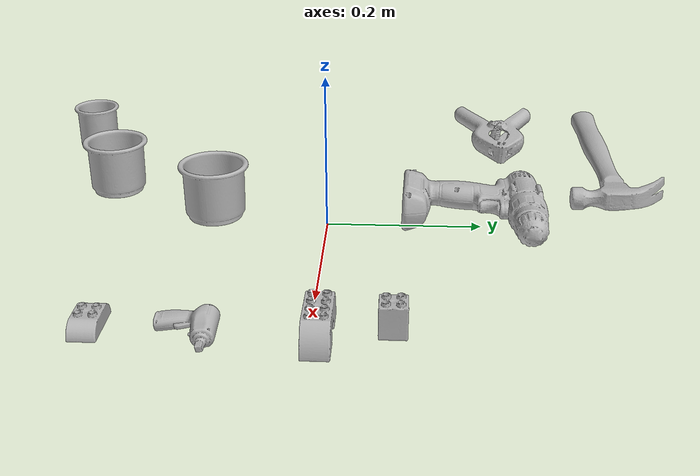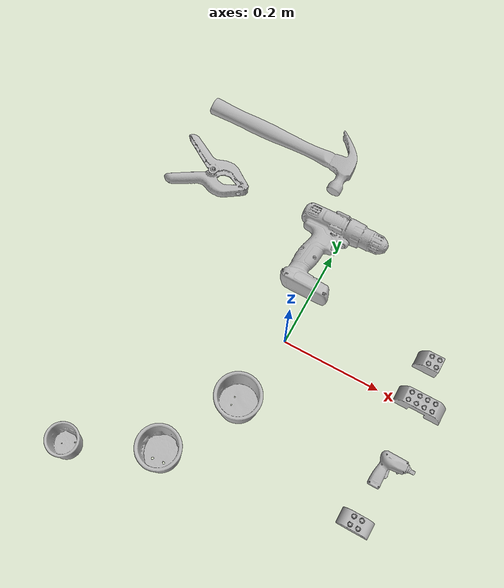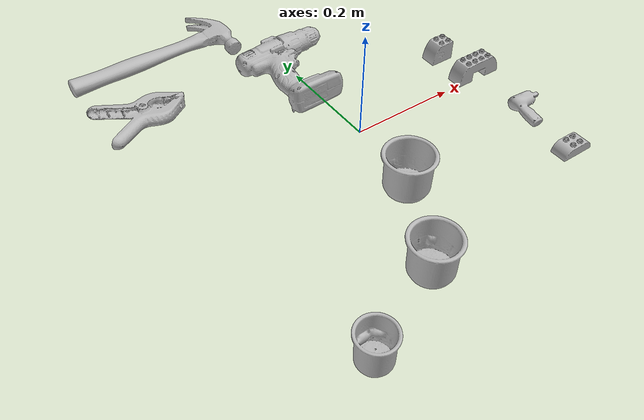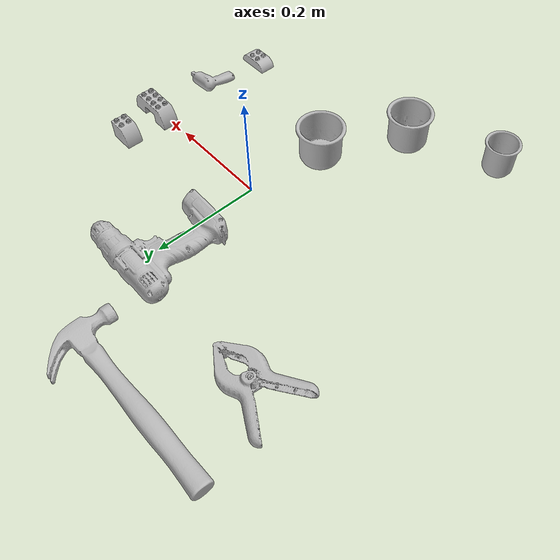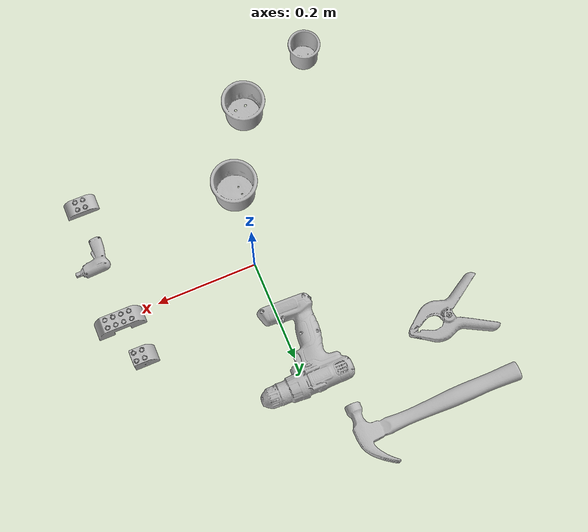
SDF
<?xml version="1.0" ?>
<sdf version="1.4">
  <world name="default">
    <light name="light1" type="point">
      <pose>0 0 1 0 0 0</pose>
      <diffuse>3 3 3 1</diffuse>
      <specular>3 3 3 1</specular>
    </light>
    <light name="light2" type="point">
      <pose>0 0.5 2 0 0 0</pose>
      <diffuse>1 1 1 1</diffuse>
      <specular>1 1 1 1</specular>
    </light>
    <light name="light3" type="point">
      <pose>0 0.5 2 0 0 0</pose>
      <diffuse>3 3 3 1</diffuse>
      <specular>3 3 3 1</specular>
    </light>
    <scene>
      <ambient>0.7 0.7 0.7</ambient>
    </scene>
    <model name="cup1">
      <link name="link_cup1">
        <collision name="default">
          <geometry>
            <mesh>
              <uri>model://g_cups/collision_meshes/collision.obj</uri>
              <scale>1.0 1.0 1.0</scale>
            </mesh>
          </geometry>
          <surface>
            <friction>
              <ode>
                <mu>0.5</mu>
                <mu2>0.5</mu2>
              </ode>
            </friction>
          </surface>
        </collision>
        <visual name="default">
          <geometry>
            <mesh>
              <uri>model://g_cups/visual_meshes/visual.dae</uri>
              <scale>1.0 1.0 1.0</scale>
            </mesh>
          </geometry>
        </visual>
        <inertial>
          <mass>0.057625629007816315</mass>
          <pose>-0.0007946282275952399 -4.206500670989044e-05 -0.0021329375449568033 -0.21382697289054745 -0.3141031271963666 0.3112149002706268</pose>
          <inertia>
            <ixx>6.726202e-05</ixx>
            <iyy>6.7033216e-05</iyy>
            <izz>6.967186e-05</izz>
            <ixy>0</ixy>
            <ixz>0</ixz>
            <iyz>0</iyz>
          </inertia>
        </inertial>
      </link>
      <pose>-0.09998200088739395 -0.30000150203704834 0.037202995270490646 -4.470347262849942e-08 -1.4342367990472e-07 -1.5273689903117166e-07</pose>
    </model>
    <model name="cup2">
      <link name="link_cup2">
        <collision name="default">
          <geometry>
            <mesh>
              <uri>model://c_cups/collision_meshes/collision.obj</uri>
              <scale>1.0 1.0 1.0</scale>
            </mesh>
          </geometry>
          <surface>
            <friction>
              <ode>
                <mu>0.5</mu>
                <mu2>0.5</mu2>
              </ode>
            </friction>
          </surface>
        </collision>
        <visual name="default">
          <geometry>
            <mesh>
              <uri>model://c_cups/visual_meshes/visual.dae</uri>
              <scale>1.0 1.0 1.0</scale>
            </mesh>
          </geometry>
        </visual>
        <inertial>
          <mass>0.03477548435330391</mass>
          <pose>0.0007237261161208153 0.0020153902005404234 -0.0012750983005389571 0.30215732346046187 0.013461711857135551 -0.08771879968331305</pose>
          <inertia>
            <ixx>2.5862058e-05</ixx>
            <iyy>2.540504e-05</iyy>
            <izz>2.2871589e-05</izz>
            <ixy>0</ixy>
            <ixz>0</ixz>
            <iyz>0</iyz>
          </inertia>
        </inertial>
      </link>
      <pose>-0.25988608598709106 -0.37000346183776855 0.03345883637666702 1.4068928955393137e-05 1.320150385130219e-05 -1.1271401905641859e-06</pose>
    </model>
    <model name="cup3">
      <link name="link_cup3">
        <collision name="default">
          <geometry>
            <mesh>
              <uri>model://h_cups/collision_meshes/collision.obj</uri>
              <scale>1.0 1.0 1.0</scale>
            </mesh>
          </geometry>
          <surface>
            <friction>
              <ode>
                <mu>0.5</mu>
                <mu2>0.5</mu2>
              </ode>
            </friction>
          </surface>
        </collision>
        <visual name="default">
          <geometry>
            <mesh>
              <uri>model://h_cups/visual_meshes/visual.dae</uri>
              <scale>1.0 1.0 1.0</scale>
            </mesh>
          </geometry>
        </visual>
        <inertial>
          <mass>0.050017159432172775</mass>
          <pose>-2.702731035242323e-05 0.0002301866770721972 -0.0018405388109385967 -0.024362003715272553 0.06545245272055236 0.12885201823743497</pose>
          <inertia>
            <ixx>6.459484e-05</ixx>
            <iyy>6.382401e-05</iyy>
            <izz>6.774227e-05</izz>
            <ixy>0</ixy>
            <ixz>0</ixz>
            <iyz>0</iyz>
          </inertia>
        </inertial>
      </link>
      <pose>-0.020061010494828224 -0.15000037848949432 0.037758007645606995 1.7834828880111618e-07 -1.3702076926646524e-07 -5.403998717186987e-07</pose>
    </model>
    <model name="toy1">
      <link name="link_toy1">
        <collision name="default">
          <geometry>
            <mesh>
              <uri>model://e_lego_duplo/collision_meshes/collision.obj</uri>
              <scale>1.0 1.0 1.0</scale>
            </mesh>
          </geometry>
          <surface>
            <friction>
              <ode>
                <mu>0.5</mu>
                <mu2>0.5</mu2>
              </ode>
            </friction>
          </surface>
        </collision>
        <visual name="default">
          <geometry>
            <mesh>
              <uri>model://e_lego_duplo/visual_meshes/visual.dae</uri>
              <scale>1.0 1.0 1.0</scale>
            </mesh>
          </geometry>
        </visual>
        <inertial>
          <mass>0.09100330621004105</mass>
          <pose>0.0003256048948969692 0.00023485418932978064 0.0019521461799740791 -0.02256778535698338 -6.825395529084007e-05 -0.0076251622764869605</pose>
          <inertia>
            <ixx>1.897719e-05</ixx>
            <iyy>7.788726e-05</iyy>
            <izz>7.584653e-05</izz>
            <ixy>0</ixy>
            <ixz>0</ixz>
            <iyz>0</iyz>
          </inertia>
        </inertial>
      </link>
      <pose>0.28019002079963684 0.00997549295425415 0.021808994933962822 1.860584574109825e-09 -5.093170373306281e-10 4.662823016114122e-09</pose>
    </model>
    <model name="toy2">
      <link name="link_toy2">
        <collision name="default">
          <geometry>
            <mesh>
              <uri>model://b_toy_airplane/collision_meshes/collision.obj</uri>
              <scale>0.5 0.5 0.5</scale>
            </mesh>
          </geometry>
          <surface>
            <friction>
              <ode>
                <mu>0.5</mu>
                <mu2>0.5</mu2>
              </ode>
            </friction>
          </surface>
        </collision>
        <visual name="default">
          <geometry>
            <mesh>
              <uri>model://b_toy_airplane/visual_meshes/visual.dae</uri>
              <scale>0.5 0.5 0.5</scale>
            </mesh>
          </geometry>
        </visual>
        <inertial>
          <mass>0.06363805383443832</mass>
          <pose>0.002540681976824999 0.0020077931694686413 0.004771532956510782 -0.0400181041712346 -0.04022185546555606 -0.5601502891427816</pose>
          <inertia>
            <ixx>2.9536302e-05</ixx>
            <iyy>1.1805946e-05</iyy>
            <izz>3.6746103e-05</izz>
            <ixy>0</ixy>
            <ixz>0</ixz>
            <iyz>0</iyz>
          </inertia>
        </inertial>
      </link>
      <pose>0.2774140536785126 -0.12308480590581894 0.008488938212394714 0.1848764563268339 0.11349919244467171 0.00854423184243772</pose>
    </model>
    <model name="toy3">
      <link name="link_toy3">
        <collision name="default">
          <geometry>
            <mesh>
              <uri>model://d_lego_duplo/collision_meshes/collision.obj</uri>
              <scale>1.0 1.0 1.0</scale>
            </mesh>
          </geometry>
          <surface>
            <friction>
              <ode>
                <mu>0.5</mu>
                <mu2>0.5</mu2>
              </ode>
            </friction>
          </surface>
        </collision>
        <visual name="default">
          <geometry>
            <mesh>
              <uri>model://d_lego_duplo/visual_meshes/visual.dae</uri>
              <scale>1.0 1.0 1.0</scale>
            </mesh>
          </geometry>
        </visual>
        <inertial>
          <mass>0.05334000289440155</mass>
          <pose>0.002830563811585307 0.0001636617089388892 0.0008589810458943248 0.0801090676593232 -0.3835525121717052 0.0010296416750687279</pose>
          <inertia>
            <ixx>1.0325837e-05</ixx>
            <iyy>1.4655165e-05</iyy>
            <izz>1.4132847e-05</izz>
            <ixy>0</ixy>
            <ixz>0</ixz>
            <iyz>0</iyz>
          </inertia>
        </inertial>
      </link>
      <pose>0.25997552275657654 0.08989548683166504 0.02173999324440956 -2.747401328792241e-08 -2.0721930816224032e-08 -2.5704503030921765e-07</pose>
    </model>
    <model name="toy4">
      <link name="link_toy4">
        <collision name="default">
          <geometry>
            <mesh>
              <uri>model://a_lego_duplo/collision_meshes/collision.obj</uri>
              <scale>1.0 1.0 1.0</scale>
            </mesh>
          </geometry>
          <surface>
            <friction>
              <ode>
                <mu>0.5</mu>
                <mu2>0.5</mu2>
              </ode>
            </friction>
          </surface>
        </collision>
        <visual name="default">
          <geometry>
            <mesh>
              <uri>model://a_lego_duplo/visual_meshes/visual.dae</uri>
              <scale>1.0 1.0 1.0</scale>
            </mesh>
          </geometry>
        </visual>
        <inertial>
          <mass>0.02371947281062603</mass>
          <pose>-0.00011337659088894725 0.00018517536227591336 0.00036926098982803524 -0.014117032318495473 -0.00012566219654468525 6.139472672246545e-05</pose>
          <inertia>
            <ixx>3.0410272e-06</ixx>
            <iyy>6.8125664e-06</iyy>
            <izz>8.438875e-06</izz>
            <ixy>0</ixy>
            <ixz>0</ixz>
            <iyz>0</iyz>
          </inertia>
        </inertial>
      </link>
      <pose>0.27000001072883606 -0.24006900191307068 0.012111997231841087 -2.0488924668380296e-08 -3.985860513379026e-08 1.6731803906589965e-08</pose>
    </model>
    <model name="hardware1">
      <link name="link_hardware1">
        <collision name="default">
          <geometry>
            <mesh>
              <uri>model://hammer/collision_meshes/collision.obj</uri>
              <scale>1.0 1.0 1.0</scale>
            </mesh>
          </geometry>
          <surface>
            <friction>
              <ode>
                <mu>0.5</mu>
                <mu2>0.5</mu2>
              </ode>
            </friction>
          </surface>
        </collision>
        <visual name="default">
          <geometry>
            <mesh>
              <uri>model://hammer/visual_meshes/visual.dae</uri>
              <scale>1.0 1.0 1.0</scale>
            </mesh>
          </geometry>
        </visual>
        <inertial>
          <mass>0.21542595326900482</mass>
          <pose>0.009415775537490845 -0.011892358772456646 -0.00012350629549473524 0.02315578421630864 -0.004792165572519315 -0.012760317567756519</pose>
          <inertia>
            <ixx>9.2278024e-05</ixx>
            <iyy>0.0025004656</iyy>
            <izz>0.002572105</izz>
            <ixy>0</ixy>
            <ixz>0</ixz>
            <iyz>0</iyz>
          </inertia>
        </inertial>
      </link>
      <pose>-0.198090061545372 0.39657503366470337 0.01626737415790558 -0.005199114803150206 -0.0013802417152266936 -3.553815704658461e-05</pose>
    </model>
    <model name="hardware2">
      <link name="link_hardware2">
        <collision name="default">
          <geometry>
            <mesh>
              <uri>model://large_clamp/collision_meshes/collision.obj</uri>
              <scale>1.0 1.0 1.0</scale>
            </mesh>
          </geometry>
          <surface>
            <friction>
              <ode>
                <mu>0.5</mu>
                <mu2>0.5</mu2>
              </ode>
            </friction>
          </surface>
        </collision>
        <visual name="default">
          <geometry>
            <mesh>
              <uri>model://large_clamp/visual_meshes/visual.dae</uri>
              <scale>1.0 1.0 1.0</scale>
            </mesh>
          </geometry>
        </visual>
        <inertial>
          <mass>0.16898278892040253</mass>
          <pose>0.006369357462972403 0.00035856629256159067 -0.00018398034444544464 -0.002133075920149734 0.009671594117503977 0.026633212091596442</pose>
          <inertia>
            <ixx>0.00014908903</ixx>
            <iyy>0.00028312797</iyy>
            <izz>0.00040958088</izz>
            <ixy>0</ixy>
            <ixz>0</ixz>
            <iyz>0</iyz>
          </inertia>
        </inertial>
      </link>
      <pose>-0.2983679175376892 0.24177893996238708 0.018503978848457336 -0.012137087801564252 0.046945745502566645 -0.0008523206899470624</pose>
    </model>
    <model name="hardware3">
      <link name="link_hardware3">
        <collision name="default">
          <geometry>
            <mesh>
              <uri>model://power_drill/collision_meshes/collision.obj</uri>
              <scale>1.0 1.0 1.0</scale>
            </mesh>
          </geometry>
          <surface>
            <friction>
              <ode>
                <mu>0.5</mu>
                <mu2>0.5</mu2>
              </ode>
            </friction>
          </surface>
        </collision>
        <visual name="default">
          <geometry>
            <mesh>
              <uri>model://power_drill/visual_meshes/visual.dae</uri>
              <scale>1.0 1.0 1.0</scale>
            </mesh>
          </geometry>
        </visual>
        <inertial>
          <mass>0.7224003672599792</mass>
          <pose>-0.014780545607209206 0.014369428157806396 0.0012414171360433102 0.0046091635101465946 0.00407302394444766 -0.18362692290061644</pose>
          <inertia>
            <ixx>0.002943816</ixx>
            <iyy>0.0011582379</iyy>
            <izz>0.0038878287</izz>
            <ixy>0</ixy>
            <ixz>0</ixz>
            <iyz>0</iyz>
          </inertia>
        </inertial>
      </link>
      <pose>-0.0009661288931965828 0.19042904675006866 0.02731245383620262 -0.030305982908656784 -0.04725278285902633 -9.281382026530232e-06</pose>
    </model>
  </world>
</sdf>
